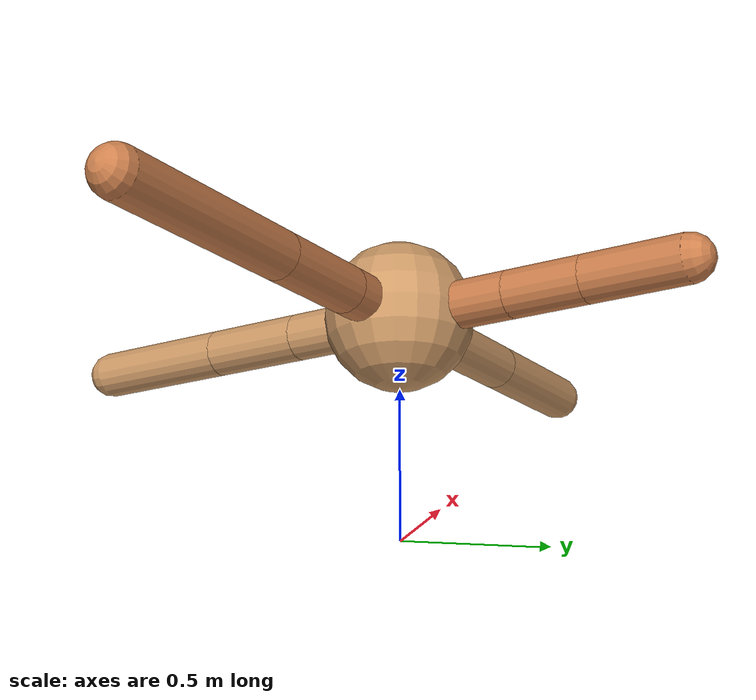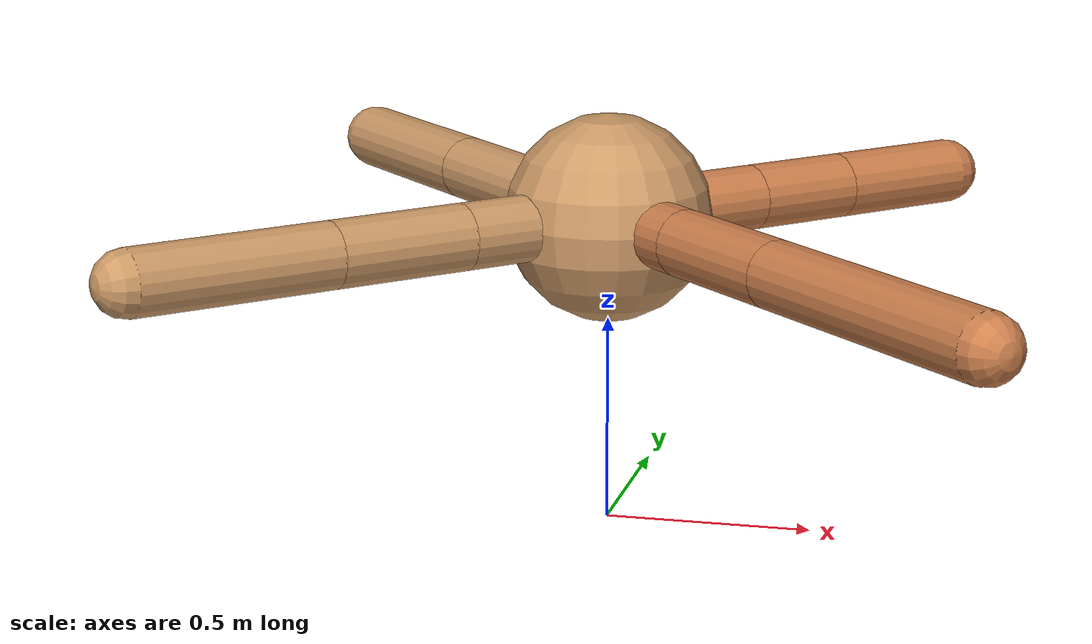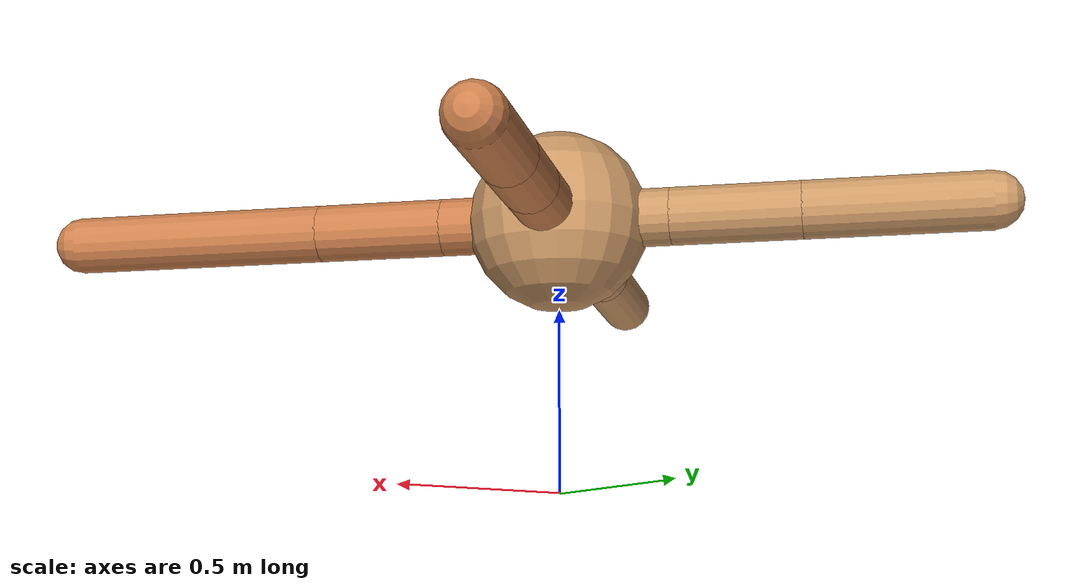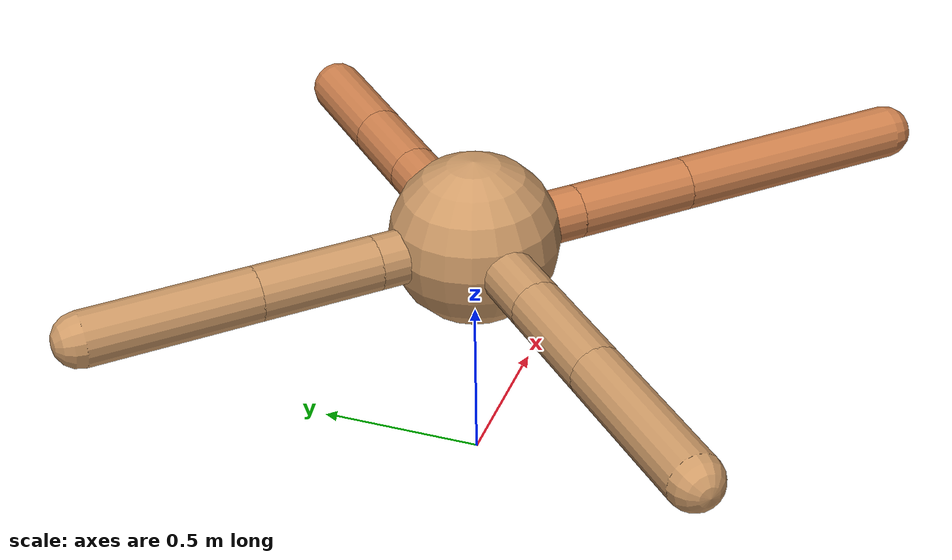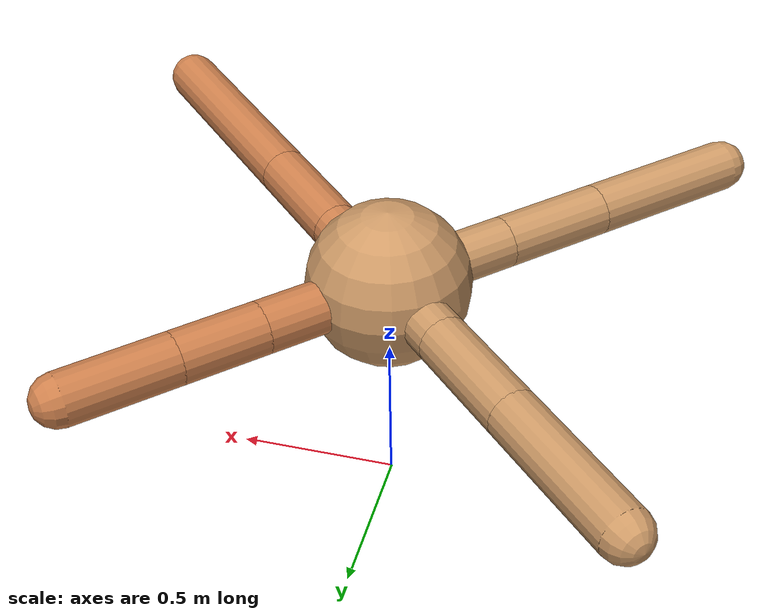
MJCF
<mujoco model="ant">
  <compiler angle="degree" coordinate="local" inertiafromgeom="true" />
  <option integrator="RK4" timestep="0.01" />
  <custom>
    <numeric data="0.0 0.0 0.55 1.0 0.0 0.0 0.0 0.0 1.0 0.0 -1.0 0.0 -1.0 0.0 1.0" name="init_qpos" />
  </custom>
  <default>
    <joint armature="1" damping="1" limited="true" />
    <geom conaffinity="0" condim="3" density="5.0" friction="1.5 0.1 0.1" margin="0.01" rgba="0.8 0.6 0.4 1" />
  </default>
  <worldbody>
    <body name="torso" pos="0 0 0.75">
      <geom name="torso_geom" pos="0 0 0" size="0.25" type="sphere" />

      <body name="front_left_leg" pos="0 0 0">
        <geom fromto="0.0 0.0 0.0 0.29433421260026565 0.29433421260026565 0.0" name="aux_1_geom" size="0.08" type="capsule" rgba=".8 .5 .3 1" />
        <body name="aux_1" pos="0.29433421260026565 0.29433421260026565 0.0">
          <joint axis="0 0 1" name="hip_1" pos="0.0 0.0 0.0" range="-40 40" type="hinge" />
          <geom fromto="0.0 0.0 0.0 0.18687342951477945 0.18687342951477945 0.0" name="left_leg_geom" size="0.08" type="capsule" rgba=".8 .5 .3 1" />
          <body pos="0.18687342951477945 0.18687342951477945 0.0" name="front_left_foot">
            <joint axis="-1 1 0" name="ankle_1" pos="0.0 0.0 0.0" range="30 100" type="hinge" />
            <geom fromto="0.0 0.0 0.0 0.24037774659591135 0.24037774659591135 0.0" name="left_ankle_geom" size="0.08" type="capsule" rgba=".8 .5 .3 1" />
          </body>
        </body>
      </body>
      <body name="front_right_leg" pos="0 0 0">
        <geom fromto="0.0 0.0 0.0 -0.22041979040675763 0.22041979040675763 0.0" name="aux_2_geom" size="0.08" type="capsule" />
        <body name="aux_2" pos="-0.22041979040675763 0.22041979040675763 0.0">
          <joint axis="0 0 1" name="hip_2" pos="0.0 0.0 0.0" range="-40 40" type="hinge" />
          <geom fromto="0.0 0.0 0.0 -0.25106576502353956 0.25106576502353956 0.0" name="right_leg_geom" size="0.08" type="capsule" />
          <body pos="-0.25106576502353956 0.25106576502353956 0.0" name="front_right_foot">
            <joint axis="1 1 0" name="ankle_2" pos="0.0 0.0 0.0" range="-100 -30" type="hinge" />
            <geom fromto="0.0 0.0 0.0 -0.35236501061777775 0.35236501061777775 0.0" name="right_ankle_geom" size="0.08" type="capsule" />
          </body>
        </body>
      </body>
      <body name="left_back_leg" pos="0 0 0">
        <geom fromto="0.0 0.0 0.0 -0.2841837406160021 -0.2841837406160021 0.0" name="aux_3_geom" size="0.08" type="capsule" />
        <body name="aux_3" pos="-0.2841837406160021 -0.2841837406160021 0.0">
          <joint axis="0 0 1" name="hip_3" pos="0.0 0.0 0.0" range="-40 40" type="hinge" />
          <geom fromto="0.0 0.0 0.0 -0.24216053777391133 -0.24216053777391133 0.0" name="back_leg_geom" size="0.08" type="capsule" />
          <body pos="-0.24216053777391133 -0.24216053777391133 0.0" name="left_back_foot">
            <joint axis="-1 1 0" name="ankle_3" pos="0.0 0.0 0.0" range="-100 -30" type="hinge" />
            <geom fromto="0.0 0.0 0.0 -0.35556661252874133 -0.35556661252874133 0.0" name="third_ankle_geom" size="0.08" type="capsule" />
          </body>
        </body>
      </body>
      <body name="right_back_leg" pos="0 0 0">
        <geom fromto="0.0 0.0 0.0 0.2299519653403022 -0.2299519653403022 0.0" name="aux_4_geom" size="0.08" type="capsule" rgba=".8 .5 .3 1" />
        <body name="aux_4" pos="0.2299519653403022 -0.2299519653403022 0.0">
          <joint axis="0 0 1" name="hip_4" pos="0.0 0.0 0.0" range="-40 40" type="hinge" />
          <geom fromto="0.0 0.0 0.0 0.25306688929965776 -0.25306688929965776 0.0" name="rightback_leg_geom" size="0.08" type="capsule" rgba=".8 .5 .3 1" />
          <body pos="0.25306688929965776 -0.25306688929965776 0.0" name="right_back_foot">
            <joint axis="1 1 0" name="ankle_4" pos="0.0 0.0 0.0" range="30 100" type="hinge" />
            <geom fromto="0.0 0.0 0.0 0.5137793356073672 -0.5137793356073672 0.0" name="fourth_ankle_geom" size="0.08" type="capsule" rgba=".8 .5 .3 1" />
          </body>
        </body>
      </body>
    </body>
  </worldbody>
  <actuator>
    <motor ctrllimited="true" ctrlrange="-1.0 1.0" joint="hip_4" gear="150" />
    <motor ctrllimited="true" ctrlrange="-1.0 1.0" joint="ankle_4" gear="150" />
    <motor ctrllimited="true" ctrlrange="-1.0 1.0" joint="hip_1" gear="150" />
    <motor ctrllimited="true" ctrlrange="-1.0 1.0" joint="ankle_1" gear="150" />
    <motor ctrllimited="true" ctrlrange="-1.0 1.0" joint="hip_2" gear="150" />
    <motor ctrllimited="true" ctrlrange="-1.0 1.0" joint="ankle_2" gear="150" />
    <motor ctrllimited="true" ctrlrange="-1.0 1.0" joint="hip_3" gear="150" />
    <motor ctrllimited="true" ctrlrange="-1.0 1.0" joint="ankle_3" gear="150" />
  </actuator>
</mujoco>
